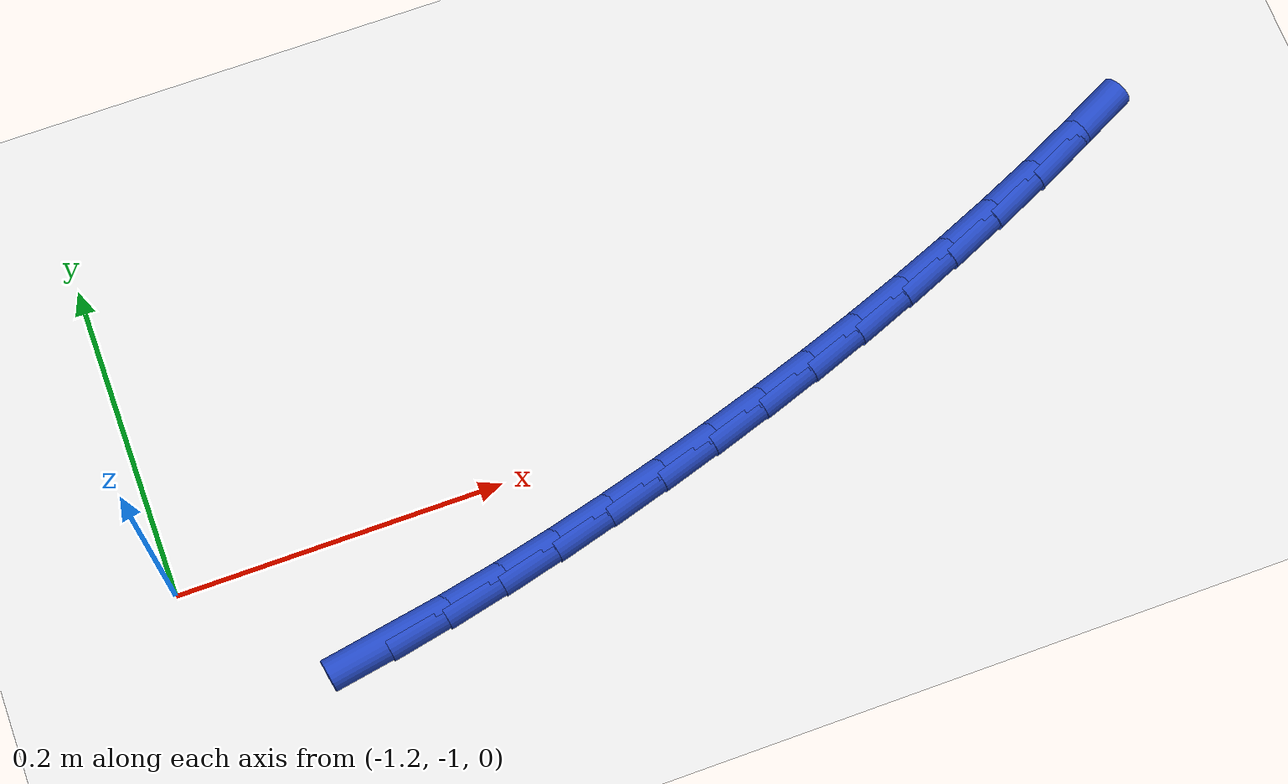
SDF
<sdf version="1.6">
 <world name="default">
  <model name="ground_plane">
   <static>1</static>
   <link name="link">
    <collision name="collision">
     <geometry><plane><normal>0 0 1</normal><size>100 100</size></plane></geometry>
     <surface><friction><ode><mu>100</mu><mu2>50</mu2></ode></friction></surface>
    </collision>
    <visual name="visual">
     <cast_shadows>0</cast_shadows>
     <geometry><plane><normal>0 0 1</normal><size>100 100</size></plane></geometry>
     <material>
      <script><uri>file://media/materials/scripts/gazebo.material</uri><name>Gazebo/WhiteGlow</name></script>
     </material>
    </visual>
   </link>
  </model>
  <model name="line">
   <link name="link_135">
    <pose>-1.0921092285753666 -1.0705356199021212 0.01 0 1.57 0.17677728078740962</pose>
    <collision name="collision">
     <geometry><cylinder><radius>0.01</radius><length>0.08</length></cylinder></geometry>
    </collision>
    <visual name="visual">
     <material>
      <script><name>Gazebo/Blue</name><uri>file://media/materials/scripts/gazebo.material</uri></script>
     </material>
     <geometry><cylinder><radius>0.01</radius><length>0.08</length></cylinder></geometry>
    </visual>
   </link>
   <link name="link_136">
    <pose>-1.0555897920512745 -1.0640117134056104 0.01 0 1.57 0.20520881256076381</pose>
    <collision name="collision">
     <geometry><cylinder><radius>0.01</radius><length>0.08</length></cylinder></geometry>
    </collision>
    <visual name="visual">
     <material>
      <script><name>Gazebo/Blue</name><uri>file://media/materials/scripts/gazebo.material</uri></script>
     </material>
     <geometry><cylinder><radius>0.01</radius><length>0.08</length></cylinder></geometry>
    </visual>
   </link>
   <link name="link_137">
    <pose>-1.0192695069309559 -1.0564520577001295 0.01 0 1.57 0.23042900938701133</pose>
    <collision name="collision">
     <geometry><cylinder><radius>0.01</radius><length>0.08</length></cylinder></geometry>
    </collision>
    <visual name="visual">
     <material>
      <script><name>Gazebo/Blue</name><uri>file://media/materials/scripts/gazebo.material</uri></script>
     </material>
     <geometry><cylinder><radius>0.01</radius><length>0.08</length></cylinder></geometry>
    </visual>
   </link>
   <link name="link_138">
    <pose>-0.9831405678427056 -1.047976355387043 0.01 0 1.57 0.2524451017767659</pose>
    <collision name="collision">
     <geometry><cylinder><radius>0.01</radius><length>0.08</length></cylinder></geometry>
    </collision>
    <visual name="visual">
     <material>
      <script><name>Gazebo/Blue</name><uri>file://media/materials/scripts/gazebo.material</uri></script>
     </material>
     <geometry><cylinder><radius>0.01</radius><length>0.08</length></cylinder></geometry>
    </visual>
   </link>
   <link name="link_139">
    <pose>-0.9471951694148167 -1.0387043090677135 0.01 0 1.57 0.27127566261417935</pose>
    <collision name="collision">
     <geometry><cylinder><radius>0.01</radius><length>0.08</length></cylinder></geometry>
    </collision>
    <visual name="visual">
     <material>
      <script><name>Gazebo/Blue</name><uri>file://media/materials/scripts/gazebo.material</uri></script>
     </material>
     <geometry><cylinder><radius>0.01</radius><length>0.08</length></cylinder></geometry>
    </visual>
   </link>
   <link name="link_140">
    <pose>-0.9114255062755818 -1.028755621343504 0.01 0 1.57 0.28728710288082965</pose>
    <collision name="collision">
     <geometry><cylinder><radius>0.01</radius><length>0.08</length></cylinder></geometry>
    </collision>
    <visual name="visual">
     <material>
      <script><name>Gazebo/Blue</name><uri>file://media/materials/scripts/gazebo.material</uri></script>
     </material>
     <geometry><cylinder><radius>0.01</radius><length>0.08</length></cylinder></geometry>
    </visual>
   </link>
   <link name="link_141">
    <pose>-0.8758260945011919 -1.0182373946442935 0.01 0 1.57 0.30310205480641467</pose>
    <collision name="collision">
     <geometry><cylinder><radius>0.01</radius><length>0.08</length></cylinder></geometry>
    </collision>
    <visual name="visual">
     <material>
      <script><name>Gazebo/Blue</name><uri>file://media/materials/scripts/gazebo.material</uri></script>
     </material>
     <geometry><cylinder><radius>0.01</radius><length>0.08</length></cylinder></geometry>
    </visual>
   </link>
   <link name="link_142">
    <pose>-0.8404090639431862 -1.007161128741722 0.01 0 1.57 0.3199219919444151</pose>
    <collision name="collision">
     <geometry><cylinder><radius>0.01</radius><length>0.08</length></cylinder></geometry>
    </collision>
    <visual name="visual">
     <material>
      <script><name>Gazebo/Blue</name><uri>file://media/materials/scripts/gazebo.material</uri></script>
     </material>
     <geometry><cylinder><radius>0.01</radius><length>0.08</length></cylinder></geometry>
    </visual>
   </link>
   <link name="link_143">
    <pose>-0.8051946213680597 -0.99549448416658 0.01 0 1.57 0.33775719213545047</pose>
    <collision name="collision">
     <geometry><cylinder><radius>0.01</radius><length>0.08</length></cylinder></geometry>
    </collision>
    <visual name="visual">
     <material>
      <script><name>Gazebo/Blue</name><uri>file://media/materials/scripts/gazebo.material</uri></script>
     </material>
     <geometry><cylinder><radius>0.01</radius><length>0.08</length></cylinder></geometry>
    </visual>
   </link>
   <link name="link_144">
    <pose>-0.7702030157165062 -0.9832048925398623 0.01 0 1.57 0.3566095241375958</pose>
    <collision name="collision">
     <geometry><cylinder><radius>0.01</radius><length>0.08</length></cylinder></geometry>
    </collision>
    <visual name="visual">
     <material>
      <script><name>Gazebo/Blue</name><uri>file://media/materials/scripts/gazebo.material</uri></script>
     </material>
     <geometry><cylinder><radius>0.01</radius><length>0.08</length></cylinder></geometry>
    </visual>
   </link>
   <link name="link_145">
    <pose>-0.7354544959292196 -0.9702597854825641 0.01 0 1.57 0.37647812338189696</pose>
    <collision name="collision">
     <geometry><cylinder><radius>0.01</radius><length>0.08</length></cylinder></geometry>
    </collision>
    <visual name="visual">
     <material>
      <script><name>Gazebo/Blue</name><uri>file://media/materials/scripts/gazebo.material</uri></script>
     </material>
     <geometry><cylinder><radius>0.01</radius><length>0.08</length></cylinder></geometry>
    </visual>
   </link>
   <link name="link_146">
    <pose>-0.7009693109468944 -0.9566265946156806 0.01 0 1.57 0.3973588042065913</pose>
    <collision name="collision">
     <geometry><cylinder><radius>0.01</radius><length>0.08</length></cylinder></geometry>
    </collision>
    <visual name="visual">
     <material>
      <script><name>Gazebo/Blue</name><uri>file://media/materials/scripts/gazebo.material</uri></script>
     </material>
     <geometry><cylinder><radius>0.01</radius><length>0.08</length></cylinder></geometry>
    </visual>
   </link>
   <link name="link_147">
    <pose>-0.6667677097102248 -0.9422727515602064 0.01 0 1.57 0.41924345392852436</pose>
    <collision name="collision">
     <geometry><cylinder><radius>0.01</radius><length>0.08</length></cylinder></geometry>
    </collision>
    <visual name="visual">
     <material>
      <script><name>Gazebo/Blue</name><uri>file://media/materials/scripts/gazebo.material</uri></script>
     </material>
     <geometry><cylinder><radius>0.01</radius><length>0.08</length></cylinder></geometry>
    </visual>
   </link>
   <link name="link_148">
    <pose>-0.6328699411599042 -0.9271656879371365 0.01 0 1.57 0.4421194216209365</pose>
    <collision name="collision">
     <geometry><cylinder><radius>0.01</radius><length>0.08</length></cylinder></geometry>
    </collision>
    <visual name="visual">
     <material>
      <script><name>Gazebo/Blue</name><uri>file://media/materials/scripts/gazebo.material</uri></script>
     </material>
     <geometry><cylinder><radius>0.01</radius><length>0.08</length></cylinder></geometry>
    </visual>
   </link>
   <link name="link_149">
    <pose>-0.5992962542366286 -0.9112728353674665 0.01 0 1.57 0.46596891798115897</pose>
    <collision name="collision">
     <geometry><cylinder><radius>0.01</radius><length>0.08</length></cylinder></geometry>
    </collision>
    <visual name="visual">
     <material>
      <script><name>Gazebo/Blue</name><uri>file://media/materials/scripts/gazebo.material</uri></script>
     </material>
     <geometry><cylinder><radius>0.01</radius><length>0.08</length></cylinder></geometry>
    </visual>
   </link>
  </model>
 </world>
</sdf>
